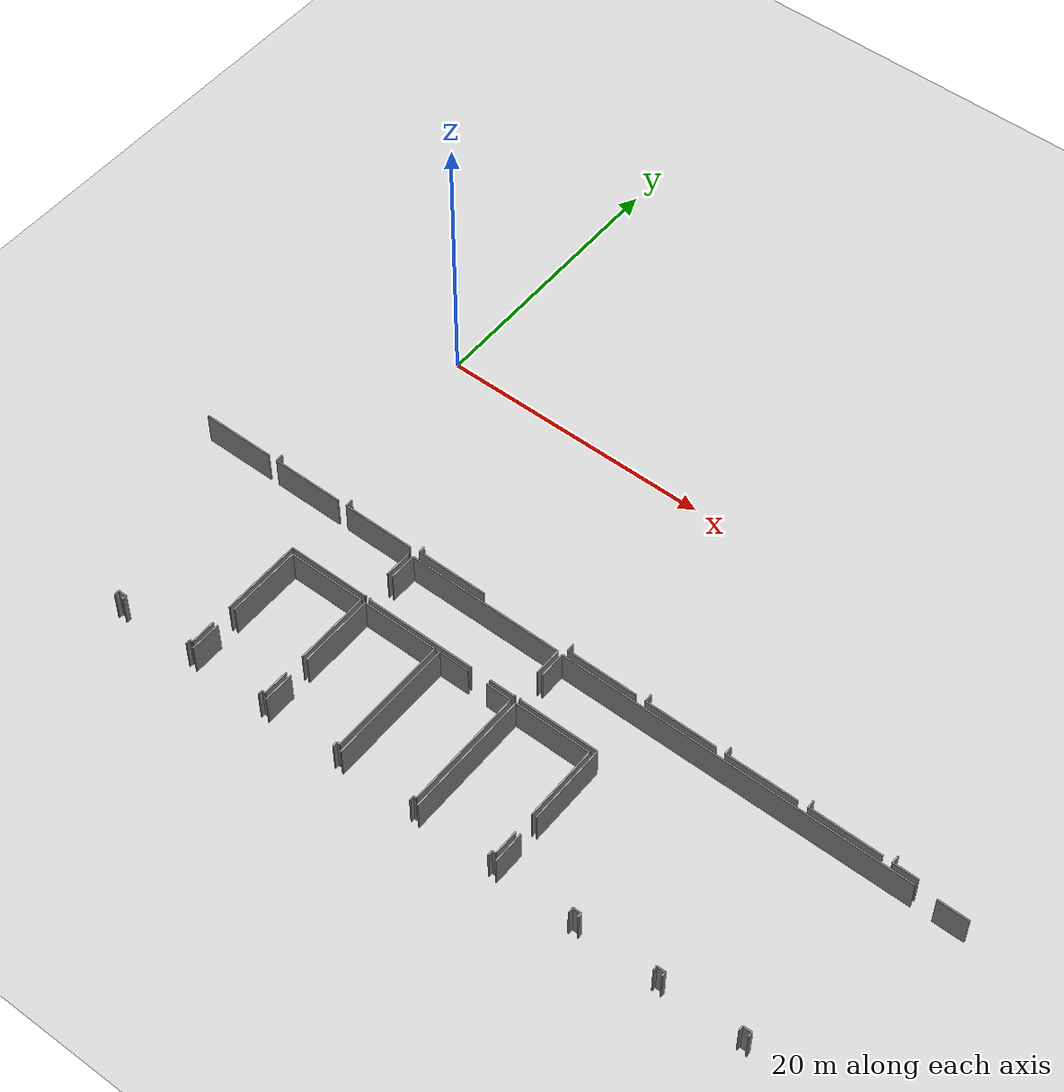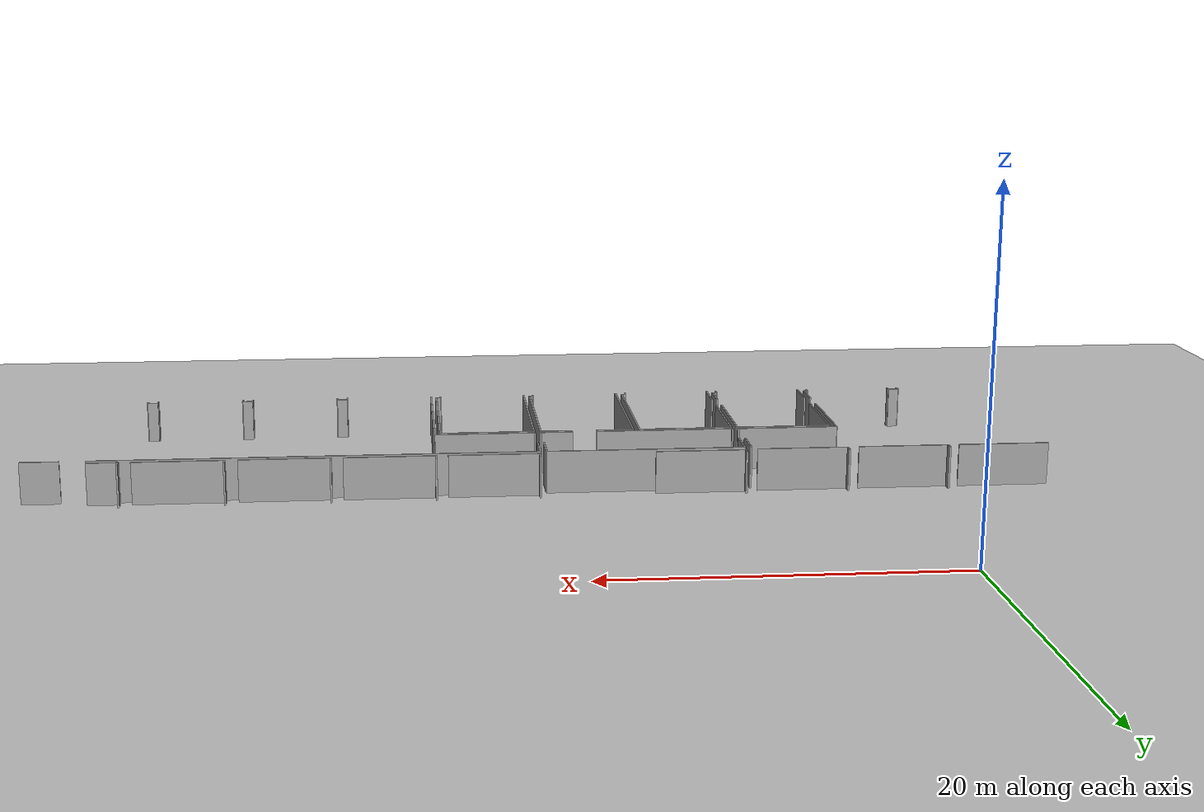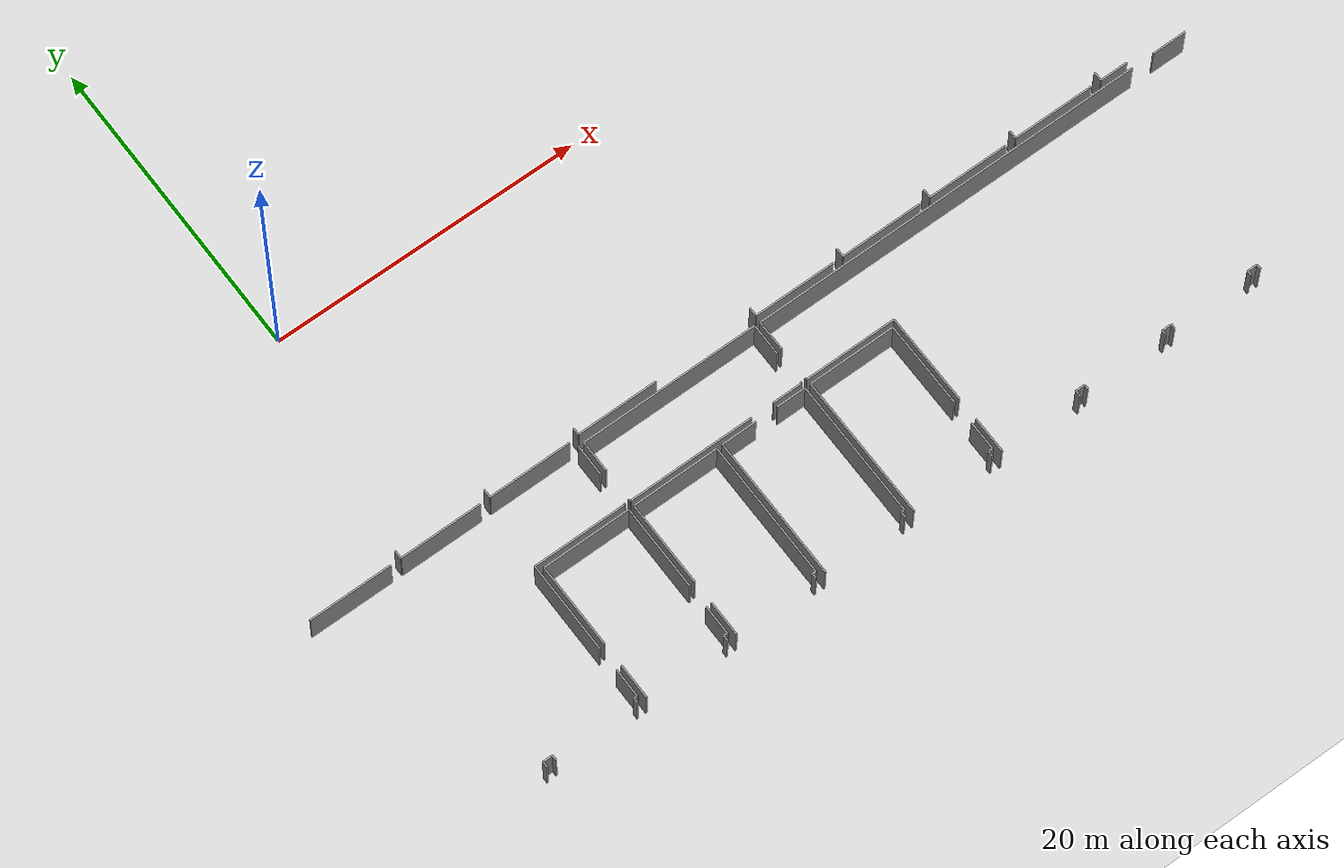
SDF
<sdf version="1.6">
 <world name="default">
  <model name="ground_plane">
   <static>1</static>
   <link name="link">
    <collision name="collision">
     <geometry><plane><normal>0 0 1</normal><size>100 100</size></plane></geometry>
     <surface><friction><ode><mu>100</mu><mu2>50</mu2></ode></friction></surface>
    </collision>
    <visual name="visual">
     <cast_shadows>0</cast_shadows>
     <geometry><plane><normal>0 0 1</normal><size>100 100</size></plane></geometry>
     <material>
      <script><uri>file://media/materials/scripts/gazebo.material</uri><name>Gazebo/Grey</name></script>
     </material>
    </visual>
   </link>
  </model>
  <model name="50010536_PLAN3">
   <static>1</static>
   <link name="Wall_336">
    <collision name="Wall_336_Collision">
     <geometry><box><size>2.05770878964 0.1 2.5</size></box></geometry>
     <pose>1.02885439482 0 1.25 0 0 0</pose>
    </collision>
    <visual name="Wall_336_Visual">
     <pose>1.02885439482 0 1.25 0 0 0</pose>
     <geometry><box><size>2.05770878964 0.1 2.5</size></box></geometry>
     <material>
      <script><uri>file://media/materials/scripts/gazebo.material</uri><name>Gazebo/Grey</name></script>
      <ambient>1 1 1 1</ambient>
     </material>
    </visual>
    <pose>111.475605498 -45.3595403612 0 0 0 -1.57079632679</pose>
   </link>
   <link name="Wall_337">
    <collision name="Wall_337_Collision">
     <geometry><box><size>0.09675269022 0.1 2.5</size></box></geometry>
     <pose>0.04837634511 0 1.25 0 0 0</pose>
    </collision>
    <visual name="Wall_337_Visual">
     <pose>0.04837634511 0 1.25 0 0 0</pose>
     <geometry><box><size>0.09675269022 0.1 2.5</size></box></geometry>
     <material>
      <script><uri>file://media/materials/scripts/gazebo.material</uri><name>Gazebo/Grey</name></script>
      <ambient>1 1 1 1</ambient>
     </material>
    </visual>
    <pose>111.475605498 -49.5000984033 0 0 0 -1.57079632679</pose>
   </link>
   <link name="Wall_338">
    <collision name="Wall_338_Collision">
     <geometry><box><size>6.03371107514 0.1 2.5</size></box></geometry>
     <pose>3.01685553757 0 1.25 0 0 0</pose>
    </collision>
    <visual name="Wall_338_Visual">
     <pose>3.01685553757 0 1.25 0 0 0</pose>
     <geometry><box><size>6.03371107514 0.1 2.5</size></box></geometry>
     <material>
      <script><uri>file://media/materials/scripts/gazebo.material</uri><name>Gazebo/Grey</name></script>
      <ambient>1 1 1 1</ambient>
     </material>
    </visual>
    <pose>111.475605498 -49.5968510935 0 0 0 3.14159265359</pose>
   </link>
   <link name="Wall_339">
    <collision name="Wall_339_Collision">
     <geometry><box><size>5.91410341872 0.1 2.5</size></box></geometry>
     <pose>2.95705170936 0 1.25 0 0 0</pose>
    </collision>
    <visual name="Wall_339_Visual">
     <pose>2.95705170936 0 1.25 0 0 0</pose>
     <geometry><box><size>5.91410341872 0.1 2.5</size></box></geometry>
     <material>
      <script><uri>file://media/materials/scripts/gazebo.material</uri><name>Gazebo/Grey</name></script>
      <ambient>1 1 1 1</ambient>
     </material>
    </visual>
    <pose>105.441894423 -49.5968510935 0 0 0 -1.57079632679</pose>
   </link>
   <link name="Wall_340">
    <collision name="Wall_340_Collision">
     <geometry><box><size>1.89010570422 0.1 2.5</size></box></geometry>
     <pose>0.945052852109 0 1.25 0 0 0</pose>
    </collision>
    <visual name="Wall_340_Visual">
     <pose>0.945052852109 0 1.25 0 0 0</pose>
     <geometry><box><size>1.89010570422 0.1 2.5</size></box></geometry>
     <material>
      <script><uri>file://media/materials/scripts/gazebo.material</uri><name>Gazebo/Grey</name></script>
      <ambient>1 1 1 1</ambient>
     </material>
    </visual>
    <pose>105.441894423 -56.985861664 0 0 0 -1.57079632679</pose>
   </link>
   <link name="Wall_341">
    <collision name="Wall_341_Collision">
     <geometry><box><size>0.21280512967 0.1 2.5</size></box></geometry>
     <pose>0.106402564835 0 1.25 0 0 0</pose>
    </collision>
    <visual name="Wall_341_Visual">
     <pose>0.106402564835 0 1.25 0 0 0</pose>
     <geometry><box><size>0.21280512967 0.1 2.5</size></box></geometry>
     <material>
      <script><uri>file://media/materials/scripts/gazebo.material</uri><name>Gazebo/Grey</name></script>
      <ambient>1 1 1 1</ambient>
     </material>
    </visual>
    <pose>105.441894423 -58.8759673682 0 0 0 3.14159265359</pose>
   </link>
   <link name="Wall_342">
    <collision name="Wall_342_Collision">
     <geometry><box><size>0.330127289464 0.1 2.5</size></box></geometry>
     <pose>0.165063644732 0 1.25 0 0 0</pose>
    </collision>
    <visual name="Wall_342_Visual">
     <pose>0.165063644732 0 1.25 0 0 0</pose>
     <geometry><box><size>0.330127289464 0.1 2.5</size></box></geometry>
     <material>
      <script><uri>file://media/materials/scripts/gazebo.material</uri><name>Gazebo/Grey</name></script>
      <ambient>1 1 1 1</ambient>
     </material>
    </visual>
    <pose>105.229089293 -58.8759673682 0 0 0 -1.57079632679</pose>
   </link>
   <link name="Wall_343">
    <collision name="Wall_343_Collision">
     <geometry><box><size>0.326064184363 0.1 2.5</size></box></geometry>
     <pose>0.163032092182 0 1.25 0 0 0</pose>
    </collision>
    <visual name="Wall_343_Visual">
     <pose>0.163032092182 0 1.25 0 0 0</pose>
     <geometry><box><size>0.326064184363 0.1 2.5</size></box></geometry>
     <material>
      <script><uri>file://media/materials/scripts/gazebo.material</uri><name>Gazebo/Grey</name></script>
      <ambient>1 1 1 1</ambient>
     </material>
    </visual>
    <pose>99.8017966543 -59.2060946577 0 0 0 1.57079632679</pose>
   </link>
   <link name="Wall_344">
    <collision name="Wall_344_Collision">
     <geometry><box><size>0.615052534679 0.1 2.5</size></box></geometry>
     <pose>0.30752626734 0 1.25 0 0 0</pose>
    </collision>
    <visual name="Wall_344_Visual">
     <pose>0.30752626734 0 1.25 0 0 0</pose>
     <geometry><box><size>0.615052534679 0.1 2.5</size></box></geometry>
     <material>
      <script><uri>file://media/materials/scripts/gazebo.material</uri><name>Gazebo/Grey</name></script>
      <ambient>1 1 1 1</ambient>
     </material>
    </visual>
    <pose>99.8017966543 -58.8800304733 0 0 0 3.14159265359</pose>
   </link>
   <link name="Wall_345">
    <collision name="Wall_345_Collision">
     <geometry><box><size>0.379646382884 0.1 2.5</size></box></geometry>
     <pose>0.189823191442 0 1.25 0 0 0</pose>
    </collision>
    <visual name="Wall_345_Visual">
     <pose>0.189823191442 0 1.25 0 0 0</pose>
     <geometry><box><size>0.379646382884 0.1 2.5</size></box></geometry>
     <material>
      <script><uri>file://media/materials/scripts/gazebo.material</uri><name>Gazebo/Grey</name></script>
      <ambient>1 1 1 1</ambient>
     </material>
    </visual>
    <pose>99.1867441196 -58.8800304733 0 0 0 -1.57079632679</pose>
   </link>
   <link name="Wall_374">
    <collision name="Wall_374_Collision">
     <geometry><box><size>5.6830143161 0.1 2.5</size></box></geometry>
     <pose>2.84150715805 0 1.25 0 0 0</pose>
    </collision>
    <visual name="Wall_374_Visual">
     <pose>2.84150715805 0 1.25 0 0 0</pose>
     <geometry><box><size>5.6830143161 0.1 2.5</size></box></geometry>
     <material>
      <script><uri>file://media/materials/scripts/gazebo.material</uri><name>Gazebo/Grey</name></script>
      <ambient>1 1 1 1</ambient>
     </material>
    </visual>
    <pose>105.792845126 -49.9531346221 0 0 0 0.0</pose>
   </link>
   <link name="Wall_375">
    <collision name="Wall_375_Collision">
     <geometry><box><size>5.5380122528 0.1 2.5</size></box></geometry>
     <pose>2.7690061264 0 1.25 0 0 0</pose>
    </collision>
    <visual name="Wall_375_Visual">
     <pose>2.7690061264 0 1.25 0 0 0</pose>
     <geometry><box><size>5.5380122528 0.1 2.5</size></box></geometry>
     <material>
      <script><uri>file://media/materials/scripts/gazebo.material</uri><name>Gazebo/Grey</name></script>
      <ambient>1 1 1 1</ambient>
     </material>
    </visual>
    <pose>111.475859442 -49.9531346221 0 0 0 -1.57079632679</pose>
   </link>
   <link name="Wall_376">
    <collision name="Wall_376_Collision">
     <geometry><box><size>1.90381868393 0.1 2.5</size></box></geometry>
     <pose>0.951909341967 0 1.25 0 0 0</pose>
    </collision>
    <visual name="Wall_376_Visual">
     <pose>0.951909341967 0 1.25 0 0 0</pose>
     <geometry><box><size>1.90381868393 0.1 2.5</size></box></geometry>
     <material>
      <script><uri>file://media/materials/scripts/gazebo.material</uri><name>Gazebo/Grey</name></script>
      <ambient>1 1 1 1</ambient>
     </material>
    </visual>
    <pose>111.475859442 -56.9721486843 0 0 0 -1.57079632679</pose>
   </link>
   <link name="Wall_377">
    <collision name="Wall_377_Collision">
     <geometry><box><size>0.249880963718 0.1 2.5</size></box></geometry>
     <pose>0.124940481859 0 1.25 0 0 0</pose>
    </collision>
    <visual name="Wall_377_Visual">
     <pose>0.124940481859 0 1.25 0 0 0</pose>
     <geometry><box><size>0.249880963718 0.1 2.5</size></box></geometry>
     <material>
      <script><uri>file://media/materials/scripts/gazebo.material</uri><name>Gazebo/Grey</name></script>
      <ambient>1 1 1 1</ambient>
     </material>
    </visual>
    <pose>111.475859442 -58.8759673682 0 0 0 3.14159265359</pose>
   </link>
   <link name="Wall_378">
    <collision name="Wall_378_Collision">
     <geometry><box><size>0.342570548837 0.1 2.5</size></box></geometry>
     <pose>0.171285274418 0 1.25 0 0 0</pose>
    </collision>
    <visual name="Wall_378_Visual">
     <pose>0.171285274418 0 1.25 0 0 0</pose>
     <geometry><box><size>0.342570548837 0.1 2.5</size></box></geometry>
     <material>
      <script><uri>file://media/materials/scripts/gazebo.material</uri><name>Gazebo/Grey</name></script>
      <ambient>1 1 1 1</ambient>
     </material>
    </visual>
    <pose>111.225978478 -58.8759673682 0 0 0 -1.57079632679</pose>
   </link>
   <link name="Wall_379">
    <collision name="Wall_379_Collision">
     <geometry><box><size>2.26010221249 0.1 2.5</size></box></geometry>
     <pose>1.13005110624 0 1.25 0 0 0</pose>
    </collision>
    <visual name="Wall_379_Visual">
     <pose>1.13005110624 0 1.25 0 0 0</pose>
     <geometry><box><size>2.26010221249 0.1 2.5</size></box></geometry>
     <material>
      <script><uri>file://media/materials/scripts/gazebo.material</uri><name>Gazebo/Grey</name></script>
      <ambient>1 1 1 1</ambient>
     </material>
    </visual>
    <pose>105.800717392 -59.218537917 0 0 0 1.57079632679</pose>
   </link>
   <link name="Wall_380">
    <collision name="Wall_380_Collision">
     <geometry><box><size>5.48926063648 0.1 2.5</size></box></geometry>
     <pose>2.74463031824 0 1.25 0 0 0</pose>
    </collision>
    <visual name="Wall_380_Visual">
     <pose>2.74463031824 0 1.25 0 0 0</pose>
     <geometry><box><size>5.48926063648 0.1 2.5</size></box></geometry>
     <material>
      <script><uri>file://media/materials/scripts/gazebo.material</uri><name>Gazebo/Grey</name></script>
      <ambient>1 1 1 1</ambient>
     </material>
    </visual>
    <pose>105.800717392 -55.4423896137 0 0 0 1.57223044868</pose>
   </link>
   <link name="Wall_381">
    <collision name="Wall_381_Collision">
     <geometry><box><size>2.26543503793 0.1 2.5</size></box></geometry>
     <pose>1.13271751897 0 1.25 0 0 0</pose>
    </collision>
    <visual name="Wall_381_Visual">
     <pose>1.13271751897 0 1.25 0 0 0</pose>
     <geometry><box><size>2.26543503793 0.1 2.5</size></box></geometry>
     <material>
      <script><uri>file://media/materials/scripts/gazebo.material</uri><name>Gazebo/Grey</name></script>
      <ambient>1 1 1 1</ambient>
     </material>
    </visual>
    <pose>111.828587754 -59.218537917 0 0 0 1.57079632679</pose>
   </link>
   <link name="Wall_382">
    <collision name="Wall_382_Collision">
     <geometry><box><size>5.51566517475 0.1 2.5</size></box></geometry>
     <pose>2.75783258737 0 1.25 0 0 0</pose>
    </collision>
    <visual name="Wall_382_Visual">
     <pose>2.75783258737 0 1.25 0 0 0</pose>
     <geometry><box><size>5.51566517475 0.1 2.5</size></box></geometry>
     <material>
      <script><uri>file://media/materials/scripts/gazebo.material</uri><name>Gazebo/Grey</name></script>
      <ambient>1 1 1 1</ambient>
     </material>
    </visual>
    <pose>111.828587754 -55.4629590833 0 0 0 1.57079632679</pose>
   </link>
   <link name="Wall_383">
    <collision name="Wall_383_Collision">
     <geometry><box><size>5.61597308193 0.1 2.5</size></box></geometry>
     <pose>2.80798654096 0 1.25 0 0 0</pose>
    </collision>
    <visual name="Wall_383_Visual">
     <pose>2.80798654096 0 1.25 0 0 0</pose>
     <geometry><box><size>5.61597308193 0.1 2.5</size></box></geometry>
     <material>
      <script><uri>file://media/materials/scripts/gazebo.material</uri><name>Gazebo/Grey</name></script>
      <ambient>1 1 1 1</ambient>
     </material>
    </visual>
    <pose>111.828587754 -49.9472939085 0 0 0 0.0</pose>
   </link>
   <link name="Wall_384">
    <collision name="Wall_384_Collision">
     <geometry><box><size>8.9121670952 0.1 2.5</size></box></geometry>
     <pose>4.4560835476 0 1.25 0 0 0</pose>
    </collision>
    <visual name="Wall_384_Visual">
     <pose>4.4560835476 0 1.25 0 0 0</pose>
     <geometry><box><size>8.9121670952 0.1 2.5</size></box></geometry>
     <material>
      <script><uri>file://media/materials/scripts/gazebo.material</uri><name>Gazebo/Grey</name></script>
      <ambient>1 1 1 1</ambient>
     </material>
    </visual>
    <pose>117.444560835 -49.9472939085 0 0 0 -1.57079632679</pose>
   </link>
   <link name="Wall_385">
    <collision name="Wall_385_Collision">
     <geometry><box><size>0.235660095864 0.1 2.5</size></box></geometry>
     <pose>0.117830047932 0 1.25 0 0 0</pose>
    </collision>
    <visual name="Wall_385_Visual">
     <pose>0.117830047932 0 1.25 0 0 0</pose>
     <geometry><box><size>0.235660095864 0.1 2.5</size></box></geometry>
     <material>
      <script><uri>file://media/materials/scripts/gazebo.material</uri><name>Gazebo/Grey</name></script>
      <ambient>1 1 1 1</ambient>
     </material>
    </visual>
    <pose>117.444560835 -58.8594610037 0 0 0 3.14159265359</pose>
   </link>
   <link name="Wall_386">
    <collision name="Wall_386_Collision">
     <geometry><box><size>0.336983779323 0.1 2.5</size></box></geometry>
     <pose>0.168491889661 0 1.25 0 0 0</pose>
    </collision>
    <visual name="Wall_386_Visual">
     <pose>0.168491889661 0 1.25 0 0 0</pose>
     <geometry><box><size>0.336983779323 0.1 2.5</size></box></geometry>
     <material>
      <script><uri>file://media/materials/scripts/gazebo.material</uri><name>Gazebo/Grey</name></script>
      <ambient>1 1 1 1</ambient>
     </material>
    </visual>
    <pose>117.20890074 -58.8594610037 0 0 0 -1.57079632679</pose>
   </link>
   <link name="Wall_387">
    <collision name="Wall_387_Collision">
     <geometry><box><size>9.27073612037 0.1 2.5</size></box></geometry>
     <pose>4.63536806018 0 1.25 0 0 0</pose>
    </collision>
    <visual name="Wall_387_Visual">
     <pose>4.63536806018 0 1.25 0 0 0</pose>
     <geometry><box><size>9.27073612037 0.1 2.5</size></box></geometry>
     <material>
      <script><uri>file://media/materials/scripts/gazebo.material</uri><name>Gazebo/Grey</name></script>
      <ambient>1 1 1 1</ambient>
     </material>
    </visual>
    <pose>117.829793988 -59.2101577628 0 0 0 1.57079632679</pose>
   </link>
   <link name="Wall_388">
    <collision name="Wall_388_Collision">
     <geometry><box><size>2.25832460401 0.1 2.5</size></box></geometry>
     <pose>1.129162302 0 1.25 0 0 0</pose>
    </collision>
    <visual name="Wall_388_Visual">
     <pose>1.129162302 0 1.25 0 0 0</pose>
     <geometry><box><size>2.25832460401 0.1 2.5</size></box></geometry>
     <material>
      <script><uri>file://media/materials/scripts/gazebo.material</uri><name>Gazebo/Grey</name></script>
      <ambient>1 1 1 1</ambient>
     </material>
    </visual>
    <pose>117.829793988 -49.9394216424 0 0 0 0.0</pose>
   </link>
   <link name="Wall_389">
    <collision name="Wall_389_Collision">
     <geometry><box><size>1.89467669746 0.1 2.5</size></box></geometry>
     <pose>0.947338348729 0 1.25 0 0 0</pose>
    </collision>
    <visual name="Wall_389_Visual">
     <pose>0.947338348729 0 1.25 0 0 0</pose>
     <geometry><box><size>1.89467669746 0.1 2.5</size></box></geometry>
     <material>
      <script><uri>file://media/materials/scripts/gazebo.material</uri><name>Gazebo/Grey</name></script>
      <ambient>1 1 1 1</ambient>
     </material>
    </visual>
    <pose>121.553121925 -49.9394216424 0 0 0 0.0</pose>
   </link>
   <link name="Wall_390">
    <collision name="Wall_390_Collision">
     <geometry><box><size>8.9357838936 0.1 2.5</size></box></geometry>
     <pose>4.4678919468 0 1.25 0 0 0</pose>
    </collision>
    <visual name="Wall_390_Visual">
     <pose>4.4678919468 0 1.25 0 0 0</pose>
     <geometry><box><size>8.9357838936 0.1 2.5</size></box></geometry>
     <material>
      <script><uri>file://media/materials/scripts/gazebo.material</uri><name>Gazebo/Grey</name></script>
      <ambient>1 1 1 1</ambient>
     </material>
    </visual>
    <pose>123.447798622 -49.9394216424 0 0 0 -1.57079632679</pose>
   </link>
   <link name="Wall_391">
    <collision name="Wall_391_Collision">
     <geometry><box><size>0.211789353395 0.1 2.5</size></box></geometry>
     <pose>0.105894676697 0 1.25 0 0 0</pose>
    </collision>
    <visual name="Wall_391_Visual">
     <pose>0.105894676697 0 1.25 0 0 0</pose>
     <geometry><box><size>0.211789353395 0.1 2.5</size></box></geometry>
     <material>
      <script><uri>file://media/materials/scripts/gazebo.material</uri><name>Gazebo/Grey</name></script>
      <ambient>1 1 1 1</ambient>
     </material>
    </visual>
    <pose>123.447798622 -58.875205536 0 0 0 3.14159265359</pose>
   </link>
   <link name="Wall_392">
    <collision name="Wall_392_Collision">
     <geometry><box><size>0.337237723391 0.1 2.5</size></box></geometry>
     <pose>0.168618861696 0 1.25 0 0 0</pose>
    </collision>
    <visual name="Wall_392_Visual">
     <pose>0.168618861696 0 1.25 0 0 0</pose>
     <geometry><box><size>0.337237723391 0.1 2.5</size></box></geometry>
     <material>
      <script><uri>file://media/materials/scripts/gazebo.material</uri><name>Gazebo/Grey</name></script>
      <ambient>1 1 1 1</ambient>
     </material>
    </visual>
    <pose>123.236009269 -58.875205536 0 0 0 -1.57079632679</pose>
   </link>
   <link name="Wall_393">
    <collision name="Wall_393_Collision">
     <geometry><box><size>11.6095609942 0.1 2.5</size></box></geometry>
     <pose>5.8047804971 0 1.25 0 0 0</pose>
    </collision>
    <visual name="Wall_393_Visual">
     <pose>5.8047804971 0 1.25 0 0 0</pose>
     <geometry><box><size>11.6095609942 0.1 2.5</size></box></geometry>
     <material>
      <script><uri>file://media/materials/scripts/gazebo.material</uri><name>Gazebo/Grey</name></script>
      <ambient>1 1 1 1</ambient>
     </material>
    </visual>
    <pose>111.849157223 -45.3564930324 0 0 0 0.0</pose>
   </link>
   <link name="Wall_394">
    <collision name="Wall_394_Collision">
     <geometry><box><size>2.06227978288 0.1 2.5</size></box></geometry>
     <pose>1.03113989144 0 1.25 0 0 0</pose>
    </collision>
    <visual name="Wall_394_Visual">
     <pose>1.03113989144 0 1.25 0 0 0</pose>
     <geometry><box><size>2.06227978288 0.1 2.5</size></box></geometry>
     <material>
      <script><uri>file://media/materials/scripts/gazebo.material</uri><name>Gazebo/Grey</name></script>
      <ambient>1 1 1 1</ambient>
     </material>
    </visual>
    <pose>123.458718217 -45.3564930324 0 0 0 -1.57079632679</pose>
   </link>
   <link name="Wall_395">
    <collision name="Wall_395_Collision">
     <geometry><box><size>0.109195949592 0.1 2.5</size></box></geometry>
     <pose>0.0545979747961 0 1.25 0 0 0</pose>
    </collision>
    <visual name="Wall_395_Visual">
     <pose>0.0545979747961 0 1.25 0 0 0</pose>
     <geometry><box><size>0.109195949592 0.1 2.5</size></box></geometry>
     <material>
      <script><uri>file://media/materials/scripts/gazebo.material</uri><name>Gazebo/Grey</name></script>
      <ambient>1 1 1 1</ambient>
     </material>
    </visual>
    <pose>123.458718217 -49.5059391169 0 0 0 -1.57079632679</pose>
   </link>
   <link name="Wall_396">
    <collision name="Wall_396_Collision">
     <geometry><box><size>1.92667365013 0.1 2.5</size></box></geometry>
     <pose>0.963336825064 0 1.25 0 0 0</pose>
    </collision>
    <visual name="Wall_396_Visual">
     <pose>0.963336825064 0 1.25 0 0 0</pose>
     <geometry><box><size>1.92667365013 0.1 2.5</size></box></geometry>
     <material>
      <script><uri>file://media/materials/scripts/gazebo.material</uri><name>Gazebo/Grey</name></script>
      <ambient>1 1 1 1</ambient>
     </material>
    </visual>
    <pose>123.458718217 -49.6151350665 0 0 0 3.14159265359</pose>
   </link>
   <link name="Wall_397">
    <collision name="Wall_397_Collision">
     <geometry><box><size>8.22677205346 0.1 2.5</size></box></geometry>
     <pose>4.11338602673 0 1.25 0 0 0</pose>
    </collision>
    <visual name="Wall_397_Visual">
     <pose>4.11338602673 0 1.25 0 0 0</pose>
     <geometry><box><size>8.22677205346 0.1 2.5</size></box></geometry>
     <material>
      <script><uri>file://media/materials/scripts/gazebo.material</uri><name>Gazebo/Grey</name></script>
      <ambient>1 1 1 1</ambient>
     </material>
    </visual>
    <pose>120.061962353 -49.6151350665 0 0 0 3.14159265359</pose>
   </link>
   <link name="Wall_398">
    <collision name="Wall_398_Collision">
     <geometry><box><size>0.142462622607 0.1 2.5</size></box></geometry>
     <pose>0.0712313113037 0 1.25 0 0 0</pose>
    </collision>
    <visual name="Wall_398_Visual">
     <pose>0.0712313113037 0 1.25 0 0 0</pose>
     <geometry><box><size>0.142462622607 0.1 2.5</size></box></geometry>
     <material>
      <script><uri>file://media/materials/scripts/gazebo.material</uri><name>Gazebo/Grey</name></script>
      <ambient>1 1 1 1</ambient>
     </material>
    </visual>
    <pose>111.835190299 -49.6151350665 0 0 0 1.57079632679</pose>
   </link>
   <link name="Wall_399">
    <collision name="Wall_399_Collision">
     <geometry><box><size>2.0262678622 0.1 2.5</size></box></geometry>
     <pose>1.0131339311 0 1.25 0 0 0</pose>
    </collision>
    <visual name="Wall_399_Visual">
     <pose>1.0131339311 0 1.25 0 0 0</pose>
     <geometry><box><size>2.0262678622 0.1 2.5</size></box></geometry>
     <material>
      <script><uri>file://media/materials/scripts/gazebo.material</uri><name>Gazebo/Grey</name></script>
      <ambient>1 1 1 1</ambient>
     </material>
    </visual>
    <pose>111.835190299 -47.3827127575 0 0 0 1.56390334159</pose>
   </link>
   <link name="Wall_400">
    <collision name="Wall_400_Collision">
     <geometry><box><size>9.27810049837 0.1 2.5</size></box></geometry>
     <pose>4.63905024918 0 1.25 0 0 0</pose>
    </collision>
    <visual name="Wall_400_Visual">
     <pose>4.63905024918 0 1.25 0 0 0</pose>
     <geometry><box><size>9.27810049837 0.1 2.5</size></box></geometry>
     <material>
      <script><uri>file://media/materials/scripts/gazebo.material</uri><name>Gazebo/Grey</name></script>
      <ambient>1 1 1 1</ambient>
     </material>
    </visual>
    <pose>123.829476558 -59.2170142526 0 0 0 1.57079632679</pose>
   </link>
   <link name="Wall_401">
    <collision name="Wall_401_Collision">
     <geometry><box><size>5.65254102784 0.1 2.5</size></box></geometry>
     <pose>2.82627051392 0 1.25 0 0 0</pose>
    </collision>
    <visual name="Wall_401_Visual">
     <pose>2.82627051392 0 1.25 0 0 0</pose>
     <geometry><box><size>5.65254102784 0.1 2.5</size></box></geometry>
     <material>
      <script><uri>file://media/materials/scripts/gazebo.material</uri><name>Gazebo/Grey</name></script>
      <ambient>1 1 1 1</ambient>
     </material>
    </visual>
    <pose>123.829476558 -49.9389137542 0 0 0 0.0</pose>
   </link>
   <link name="Wall_402">
    <collision name="Wall_402_Collision">
     <geometry><box><size>5.55045551217 0.1 2.5</size></box></geometry>
     <pose>2.77522775609 0 1.25 0 0 0</pose>
    </collision>
    <visual name="Wall_402_Visual">
     <pose>2.77522775609 0 1.25 0 0 0</pose>
     <geometry><box><size>5.55045551217 0.1 2.5</size></box></geometry>
     <material>
      <script><uri>file://media/materials/scripts/gazebo.material</uri><name>Gazebo/Grey</name></script>
      <ambient>1 1 1 1</ambient>
     </material>
    </visual>
    <pose>129.482017586 -49.9389137542 0 0 0 -1.57079632679</pose>
   </link>
   <link name="Wall_403">
    <collision name="Wall_403_Collision">
     <geometry><box><size>1.86191791258 0.1 2.5</size></box></geometry>
     <pose>0.93095895629 0 1.25 0 0 0</pose>
    </collision>
    <visual name="Wall_403_Visual">
     <pose>0.93095895629 0 1.25 0 0 0</pose>
     <geometry><box><size>1.86191791258 0.1 2.5</size></box></geometry>
     <material>
      <script><uri>file://media/materials/scripts/gazebo.material</uri><name>Gazebo/Grey</name></script>
      <ambient>1 1 1 1</ambient>
     </material>
    </visual>
    <pose>129.482017586 -57.0087166302 0 0 0 -1.57079632679</pose>
   </link>
   <link name="Wall_404">
    <collision name="Wall_404_Collision">
     <geometry><box><size>0.27959241977 0.1 2.5</size></box></geometry>
     <pose>0.139796209885 0 1.25 0 0 0</pose>
    </collision>
    <visual name="Wall_404_Visual">
     <pose>0.139796209885 0 1.25 0 0 0</pose>
     <geometry><box><size>0.27959241977 0.1 2.5</size></box></geometry>
     <material>
      <script><uri>file://media/materials/scripts/gazebo.material</uri><name>Gazebo/Grey</name></script>
      <ambient>1 1 1 1</ambient>
     </material>
    </visual>
    <pose>129.482017586 -58.8706345427 0 0 0 3.14159265359</pose>
   </link>
   <link name="Wall_405">
    <collision name="Wall_405_Collision">
     <geometry><box><size>0.350696759039 0.1 2.5</size></box></geometry>
     <pose>0.175348379519 0 1.25 0 0 0</pose>
    </collision>
    <visual name="Wall_405_Visual">
     <pose>0.175348379519 0 1.25 0 0 0</pose>
     <geometry><box><size>0.350696759039 0.1 2.5</size></box></geometry>
     <material>
      <script><uri>file://media/materials/scripts/gazebo.material</uri><name>Gazebo/Grey</name></script>
      <ambient>1 1 1 1</ambient>
     </material>
    </visual>
    <pose>129.202425166 -58.8706345427 0 0 0 -1.57079632679</pose>
   </link>
   <link name="Wall_406">
    <collision name="Wall_406_Collision">
     <geometry><box><size>2.35253785354 0.1 2.5</size></box></geometry>
     <pose>1.17626892677 0 1.25 0 0 0</pose>
    </collision>
    <visual name="Wall_406_Visual">
     <pose>1.17626892677 0 1.25 0 0 0</pose>
     <geometry><box><size>2.35253785354 0.1 2.5</size></box></geometry>
     <material>
      <script><uri>file://media/materials/scripts/gazebo.material</uri><name>Gazebo/Grey</name></script>
      <ambient>1 1 1 1</ambient>
     </material>
    </visual>
    <pose>129.810621211 -59.3000539631 0 0 0 1.57079632679</pose>
   </link>
   <link name="Wall_407">
    <collision name="Wall_407_Collision">
     <geometry><box><size>5.86560010158 0.1 2.5</size></box></geometry>
     <pose>2.93280005079 0 1.25 0 0 0</pose>
    </collision>
    <visual name="Wall_407_Visual">
     <pose>2.93280005079 0 1.25 0 0 0</pose>
     <geometry><box><size>5.86560010158 0.1 2.5</size></box></geometry>
     <material>
      <script><uri>file://media/materials/scripts/gazebo.material</uri><name>Gazebo/Grey</name></script>
      <ambient>1 1 1 1</ambient>
     </material>
    </visual>
    <pose>129.810621211 -55.4708313494 0 0 0 1.57079632679</pose>
   </link>
   <link name="Wall_408">
    <collision name="Wall_408_Collision">
     <geometry><box><size>5.99536552074 0.1 2.5</size></box></geometry>
     <pose>2.99768276037 0 1.25 0 0 0</pose>
    </collision>
    <visual name="Wall_408_Visual">
     <pose>2.99768276037 0 1.25 0 0 0</pose>
     <geometry><box><size>5.99536552074 0.1 2.5</size></box></geometry>
     <material>
      <script><uri>file://media/materials/scripts/gazebo.material</uri><name>Gazebo/Grey</name></script>
      <ambient>1 1 1 1</ambient>
     </material>
    </visual>
    <pose>129.810621211 -49.6052312478 0 0 0 3.14159265359</pose>
   </link>
   <link name="Wall_409">
    <collision name="Wall_409_Collision">
     <geometry><box><size>0.11833793607 0.1 2.5</size></box></geometry>
     <pose>0.0591689680348 0 1.25 0 0 0</pose>
    </collision>
    <visual name="Wall_409_Visual">
     <pose>0.0591689680348 0 1.25 0 0 0</pose>
     <geometry><box><size>0.11833793607 0.1 2.5</size></box></geometry>
     <material>
      <script><uri>file://media/materials/scripts/gazebo.material</uri><name>Gazebo/Grey</name></script>
      <ambient>1 1 1 1</ambient>
     </material>
    </visual>
    <pose>123.81525569 -49.6052312478 0 0 0 1.57079632679</pose>
   </link>
   <link name="Wall_410">
    <collision name="Wall_410_Collision">
     <geometry><box><size>1.97136780624 0.1 2.5</size></box></geometry>
     <pose>0.98568390312 0 1.25 0 0 0</pose>
    </collision>
    <visual name="Wall_410_Visual">
     <pose>0.98568390312 0 1.25 0 0 0</pose>
     <geometry><box><size>1.97136780624 0.1 2.5</size></box></geometry>
     <material>
      <script><uri>file://media/materials/scripts/gazebo.material</uri><name>Gazebo/Grey</name></script>
      <ambient>1 1 1 1</ambient>
     </material>
    </visual>
    <pose>123.81525569 -47.3557946862 0 0 0 1.57079632679</pose>
   </link>
   <link name="Wall_411">
    <collision name="Wall_411_Collision">
     <geometry><box><size>25.9236263213 0.1 2.5</size></box></geometry>
     <pose>12.9618131607 0 1.25 0 0 0</pose>
    </collision>
    <visual name="Wall_411_Visual">
     <pose>12.9618131607 0 1.25 0 0 0</pose>
     <geometry><box><size>25.9236263213 0.1 2.5</size></box></geometry>
     <material>
      <script><uri>file://media/materials/scripts/gazebo.material</uri><name>Gazebo/Grey</name></script>
      <ambient>1 1 1 1</ambient>
     </material>
    </visual>
    <pose>123.81525569 -45.38442688 0 0 0 0.0</pose>
   </link>
   <link name="Wall_412">
    <collision name="Wall_412_Collision">
     <geometry><box><size>2.26061010063 0.1 2.5</size></box></geometry>
     <pose>1.13030505031 0 1.25 0 0 0</pose>
    </collision>
    <visual name="Wall_412_Visual">
     <pose>1.13030505031 0 1.25 0 0 0</pose>
     <geometry><box><size>2.26061010063 0.1 2.5</size></box></geometry>
     <material>
      <script><uri>file://media/materials/scripts/gazebo.material</uri><name>Gazebo/Grey</name></script>
      <ambient>1 1 1 1</ambient>
     </material>
    </visual>
    <pose>151.220899597 -45.38442688 0 0 0 0.0</pose>
   </link>
   <link name="Wall_418">
    <collision name="Wall_418_Collision">
     <geometry><box><size>0.315652477542 0.1 2.5</size></box></geometry>
     <pose>0.157826238771 0 1.25 0 0 0</pose>
    </collision>
    <visual name="Wall_418_Visual">
     <pose>0.157826238771 0 1.25 0 0 0</pose>
     <geometry><box><size>0.315652477542 0.1 2.5</size></box></geometry>
     <material>
      <script><uri>file://media/materials/scripts/gazebo.material</uri><name>Gazebo/Grey</name></script>
      <ambient>1 1 1 1</ambient>
     </material>
    </visual>
    <pose>147.8383646 -59.1908580135 0 0 0 1.57079632679</pose>
   </link>
   <link name="Wall_419">
    <collision name="Wall_419_Collision">
     <geometry><box><size>0.638669333079 0.1 2.5</size></box></geometry>
     <pose>0.31933466654 0 1.25 0 0 0</pose>
    </collision>
    <visual name="Wall_419_Visual">
     <pose>0.31933466654 0 1.25 0 0 0</pose>
     <geometry><box><size>0.638669333079 0.1 2.5</size></box></geometry>
     <material>
      <script><uri>file://media/materials/scripts/gazebo.material</uri><name>Gazebo/Grey</name></script>
      <ambient>1 1 1 1</ambient>
     </material>
    </visual>
    <pose>147.8383646 -58.875205536 0 0 0 3.14159265359</pose>
   </link>
   <link name="Wall_420">
    <collision name="Wall_420_Collision">
     <geometry><box><size>0.318445862299 0.1 2.5</size></box></geometry>
     <pose>0.159222931149 0 1.25 0 0 0</pose>
    </collision>
    <visual name="Wall_420_Visual">
     <pose>0.159222931149 0 1.25 0 0 0</pose>
     <geometry><box><size>0.318445862299 0.1 2.5</size></box></geometry>
     <material>
      <script><uri>file://media/materials/scripts/gazebo.material</uri><name>Gazebo/Grey</name></script>
      <ambient>1 1 1 1</ambient>
     </material>
    </visual>
    <pose>147.199695267 -58.875205536 0 0 0 -1.57079632679</pose>
   </link>
   <link name="Wall_421">
    <collision name="Wall_421_Collision">
     <geometry><box><size>0.311081484303 0.1 2.5</size></box></geometry>
     <pose>0.155540742152 0 1.25 0 0 0</pose>
    </collision>
    <visual name="Wall_421_Visual">
     <pose>0.155540742152 0 1.25 0 0 0</pose>
     <geometry><box><size>0.311081484303 0.1 2.5</size></box></geometry>
     <material>
      <script><uri>file://media/materials/scripts/gazebo.material</uri><name>Gazebo/Grey</name></script>
      <ambient>1 1 1 1</ambient>
     </material>
    </visual>
    <pose>141.833603149 -59.1936513983 0 0 0 1.57079632679</pose>
   </link>
   <link name="Wall_422">
    <collision name="Wall_422_Collision">
     <geometry><box><size>0.618099863505 0.1 2.5</size></box></geometry>
     <pose>0.309049931753 0 1.25 0 0 0</pose>
    </collision>
    <visual name="Wall_422_Visual">
     <pose>0.309049931753 0 1.25 0 0 0</pose>
     <geometry><box><size>0.618099863505 0.1 2.5</size></box></geometry>
     <material>
      <script><uri>file://media/materials/scripts/gazebo.material</uri><name>Gazebo/Grey</name></script>
      <ambient>1 1 1 1</ambient>
     </material>
    </visual>
    <pose>141.833603149 -58.882569914 0 0 0 3.14159265359</pose>
   </link>
   <link name="Wall_423">
    <collision name="Wall_423_Collision">
     <geometry><box><size>0.307780211408 0.1 2.5</size></box></geometry>
     <pose>0.153890105704 0 1.25 0 0 0</pose>
    </collision>
    <visual name="Wall_423_Visual">
     <pose>0.153890105704 0 1.25 0 0 0</pose>
     <geometry><box><size>0.307780211408 0.1 2.5</size></box></geometry>
     <material>
      <script><uri>file://media/materials/scripts/gazebo.material</uri><name>Gazebo/Grey</name></script>
      <ambient>1 1 1 1</ambient>
     </material>
    </visual>
    <pose>141.215503285 -58.882569914 0 0 0 -1.57079632679</pose>
   </link>
   <link name="Wall_424">
    <collision name="Wall_424_Collision">
     <geometry><box><size>0.302701330032 0.1 2.5</size></box></geometry>
     <pose>0.151350665016 0 1.25 0 0 0</pose>
    </collision>
    <visual name="Wall_424_Visual">
     <pose>0.151350665016 0 1.25 0 0 0</pose>
     <geometry><box><size>0.302701330032 0.1 2.5</size></box></geometry>
     <material>
      <script><uri>file://media/materials/scripts/gazebo.material</uri><name>Gazebo/Grey</name></script>
      <ambient>1 1 1 1</ambient>
     </material>
    </visual>
    <pose>135.812081389 -59.1903501254 0 0 0 1.57079632679</pose>
   </link>
   <link name="Wall_425">
    <collision name="Wall_425_Collision">
     <geometry><box><size>0.605402660064 0.1 2.5</size></box></geometry>
     <pose>0.302701330032 0 1.25 0 0 0</pose>
    </collision>
    <visual name="Wall_425_Visual">
     <pose>0.302701330032 0 1.25 0 0 0</pose>
     <geometry><box><size>0.605402660064 0.1 2.5</size></box></geometry>
     <material>
      <script><uri>file://media/materials/scripts/gazebo.material</uri><name>Gazebo/Grey</name></script>
      <ambient>1 1 1 1</ambient>
     </material>
    </visual>
    <pose>135.812081389 -58.8876487954 0 0 0 3.14159265359</pose>
   </link>
   <link name="Wall_426">
    <collision name="Wall_426_Collision">
     <geometry><box><size>0.410119671142 0.1 2.5</size></box></geometry>
     <pose>0.205059835571 0 1.25 0 0 0</pose>
    </collision>
    <visual name="Wall_426_Visual">
     <pose>0.205059835571 0 1.25 0 0 0</pose>
     <geometry><box><size>0.410119671142 0.1 2.5</size></box></geometry>
     <material>
      <script><uri>file://media/materials/scripts/gazebo.material</uri><name>Gazebo/Grey</name></script>
      <ambient>1 1 1 1</ambient>
     </material>
    </visual>
    <pose>135.206678729 -58.8876487954 0 0 0 -1.57079632679</pose>
   </link>
   <link name="Wall_655">
    <collision name="Wall_655_Collision">
     <geometry><box><size>5.27060914834 0.1 2.5</size></box></geometry>
     <pose>2.63530457417 0 1.25 0 0 0</pose>
    </collision>
    <visual name="Wall_655_Visual">
     <pose>2.63530457417 0 1.25 0 0 0</pose>
     <geometry><box><size>5.27060914834 0.1 2.5</size></box></geometry>
     <material>
      <script><uri>file://media/materials/scripts/gazebo.material</uri><name>Gazebo/Grey</name></script>
      <ambient>1 1 1 1</ambient>
     </material>
    </visual>
    <pose>117.161159255 -44.7934990318 0 0 0 3.14159265359</pose>
   </link>
   <link name="Wall_656">
    <collision name="Wall_656_Collision">
     <geometry><box><size>0.449734945878 0.1 2.5</size></box></geometry>
     <pose>0.224867472939 0 1.25 0 0 0</pose>
    </collision>
    <visual name="Wall_656_Visual">
     <pose>0.224867472939 0 1.25 0 0 0</pose>
     <geometry><box><size>0.449734945878 0.1 2.5</size></box></geometry>
     <material>
      <script><uri>file://media/materials/scripts/gazebo.material</uri><name>Gazebo/Grey</name></script>
      <ambient>1 1 1 1</ambient>
     </material>
    </visual>
    <pose>111.890550106 -44.7934990318 0 0 0 1.57079632679</pose>
   </link>
   <link name="Wall_659">
    <collision name="Wall_659_Collision">
     <geometry><box><size>5.32749261975 0.1 2.5</size></box></geometry>
     <pose>2.66374630988 0 1.25 0 0 0</pose>
    </collision>
    <visual name="Wall_659_Visual">
     <pose>2.66374630988 0 1.25 0 0 0</pose>
     <geometry><box><size>5.32749261975 0.1 2.5</size></box></geometry>
     <material>
      <script><uri>file://media/materials/scripts/gazebo.material</uri><name>Gazebo/Grey</name></script>
      <ambient>1 1 1 1</ambient>
     </material>
    </visual>
    <pose>111.188902644 -44.9009173729 0 0 0 3.14159265359</pose>
   </link>
   <link name="Wall_660">
    <collision name="Wall_660_Collision">
     <geometry><box><size>0.540900866584 0.1 2.5</size></box></geometry>
     <pose>0.270450433292 0 1.25 0 0 0</pose>
    </collision>
    <visual name="Wall_660_Visual">
     <pose>0.270450433292 0 1.25 0 0 0</pose>
     <geometry><box><size>0.540900866584 0.1 2.5</size></box></geometry>
     <material>
      <script><uri>file://media/materials/scripts/gazebo.material</uri><name>Gazebo/Grey</name></script>
      <ambient>1 1 1 1</ambient>
     </material>
    </visual>
    <pose>105.861410024 -44.9009173729 0 0 0 1.57079632679</pose>
   </link>
   <link name="Wall_663">
    <collision name="Wall_663_Collision">
     <geometry><box><size>5.29701933149 0.1 2.5</size></box></geometry>
     <pose>2.64850966575 0 1.25 0 0 0</pose>
    </collision>
    <visual name="Wall_663_Visual">
     <pose>2.64850966575 0 1.25 0 0 0</pose>
     <geometry><box><size>5.29701933149 0.1 2.5</size></box></geometry>
     <material>
      <script><uri>file://media/materials/scripts/gazebo.material</uri><name>Gazebo/Grey</name></script>
      <ambient>1 1 1 1</ambient>
     </material>
    </visual>
    <pose>105.199885725 -44.912344856 0 0 0 3.14159265359</pose>
   </link>
   <link name="Wall_664">
    <collision name="Wall_664_Collision">
     <geometry><box><size>0.537345649621 0.1 2.5</size></box></geometry>
     <pose>0.26867282481 0 1.25 0 0 0</pose>
    </collision>
    <visual name="Wall_664_Visual">
     <pose>0.26867282481 0 1.25 0 0 0</pose>
     <geometry><box><size>0.537345649621 0.1 2.5</size></box></geometry>
     <material>
      <script><uri>file://media/materials/scripts/gazebo.material</uri><name>Gazebo/Grey</name></script>
      <ambient>1 1 1 1</ambient>
     </material>
    </visual>
    <pose>99.9028663937 -44.912344856 0 0 0 1.57079632679</pose>
   </link>
   <link name="Wall_667">
    <collision name="Wall_667_Collision">
     <geometry><box><size>5.36329873345 0.1 2.5</size></box></geometry>
     <pose>2.68164936673 0 1.25 0 0 0</pose>
    </collision>
    <visual name="Wall_667_Visual">
     <pose>2.68164936673 0 1.25 0 0 0</pose>
     <geometry><box><size>5.36329873345 0.1 2.5</size></box></geometry>
     <material>
      <script><uri>file://media/materials/scripts/gazebo.material</uri><name>Gazebo/Grey</name></script>
      <ambient>1 1 1 1</ambient>
     </material>
    </visual>
    <pose>99.2382947656 -44.9113290798 0 0 0 3.14159265359</pose>
   </link>
   <link name="Wall_833">
    <collision name="Wall_833_Collision">
     <geometry><box><size>5.28406818398 0.1 2.5</size></box></geometry>
     <pose>2.64203409199 0 1.25 0 0 0</pose>
    </collision>
    <visual name="Wall_833_Visual">
     <pose>2.64203409199 0 1.25 0 0 0</pose>
     <geometry><box><size>5.28406818398 0.1 2.5</size></box></geometry>
     <material>
      <script><uri>file://media/materials/scripts/gazebo.material</uri><name>Gazebo/Grey</name></script>
      <ambient>1 1 1 1</ambient>
     </material>
    </visual>
    <pose>141.158873758 -44.9501825223 0 0 0 3.14159265359</pose>
   </link>
   <link name="Wall_834">
    <collision name="Wall_834_Collision">
     <geometry><box><size>0.599308002412 0.1 2.5</size></box></geometry>
     <pose>0.299654001206 0 1.25 0 0 0</pose>
    </collision>
    <visual name="Wall_834_Visual">
     <pose>0.299654001206 0 1.25 0 0 0</pose>
     <geometry><box><size>0.599308002412 0.1 2.5</size></box></geometry>
     <material>
      <script><uri>file://media/materials/scripts/gazebo.material</uri><name>Gazebo/Grey</name></script>
      <ambient>1 1 1 1</ambient>
     </material>
    </visual>
    <pose>135.874805574 -44.9501825223 0 0 0 1.57079632679</pose>
   </link>
   <link name="Wall_837">
    <collision name="Wall_837_Collision">
     <geometry><box><size>5.32368345872 0.1 2.5</size></box></geometry>
     <pose>2.66184172936 0 1.25 0 0 0</pose>
    </collision>
    <visual name="Wall_837_Visual">
     <pose>2.66184172936 0 1.25 0 0 0</pose>
     <geometry><box><size>5.32368345872 0.1 2.5</size></box></geometry>
     <material>
      <script><uri>file://media/materials/scripts/gazebo.material</uri><name>Gazebo/Grey</name></script>
      <ambient>1 1 1 1</ambient>
     </material>
    </visual>
    <pose>135.189156588 -44.9283433324 0 0 0 3.14159265359</pose>
   </link>
   <link name="Wall_838">
    <collision name="Wall_838_Collision">
     <geometry><box><size>0.574167539599 0.1 2.5</size></box></geometry>
     <pose>0.2870837698 0 1.25 0 0 0</pose>
    </collision>
    <visual name="Wall_838_Visual">
     <pose>0.2870837698 0 1.25 0 0 0</pose>
     <geometry><box><size>0.574167539599 0.1 2.5</size></box></geometry>
     <material>
      <script><uri>file://media/materials/scripts/gazebo.material</uri><name>Gazebo/Grey</name></script>
      <ambient>1 1 1 1</ambient>
     </material>
    </visual>
    <pose>129.86547313 -44.9283433324 0 0 0 1.57079632679</pose>
   </link>
   <link name="Wall_841">
    <collision name="Wall_841_Collision">
     <geometry><box><size>5.28711551281 0.1 2.5</size></box></geometry>
     <pose>2.6435577564 0 1.25 0 0 0</pose>
    </collision>
    <visual name="Wall_841_Visual">
     <pose>2.6435577564 0 1.25 0 0 0</pose>
     <geometry><box><size>5.28711551281 0.1 2.5</size></box></geometry>
     <material>
      <script><uri>file://media/materials/scripts/gazebo.material</uri><name>Gazebo/Grey</name></script>
      <ambient>1 1 1 1</ambient>
     </material>
    </visual>
    <pose>129.168650605 -44.9252960036 0 0 0 3.14159265359</pose>
   </link>
   <link name="Wall_842">
    <collision name="Wall_842_Collision">
     <geometry><box><size>0.564517664984 0.1 2.5</size></box></geometry>
     <pose>0.282258832492 0 1.25 0 0 0</pose>
    </collision>
    <visual name="Wall_842_Visual">
     <pose>0.282258832492 0 1.25 0 0 0</pose>
     <geometry><box><size>0.564517664984 0.1 2.5</size></box></geometry>
     <material>
      <script><uri>file://media/materials/scripts/gazebo.material</uri><name>Gazebo/Grey</name></script>
      <ambient>1 1 1 1</ambient>
     </material>
    </visual>
    <pose>123.881535092 -44.9252960036 0 0 0 1.57079632679</pose>
   </link>
   <link name="Wall_894">
    <collision name="Wall_894_Collision">
     <geometry><box><size>1.82408024633 0.1 2.5</size></box></geometry>
     <pose>0.912040123163 0 1.25 0 0 0</pose>
    </collision>
    <visual name="Wall_894_Visual">
     <pose>0.912040123163 0 1.25 0 0 0</pose>
     <geometry><box><size>1.82408024633 0.1 2.5</size></box></geometry>
     <material>
      <script><uri>file://media/materials/scripts/gazebo.material</uri><name>Gazebo/Grey</name></script>
      <ambient>1 1 1 1</ambient>
     </material>
    </visual>
    <pose>149.698504904 -44.9428181443 0 0 0 3.14159265359</pose>
   </link>
   <link name="Wall_895">
    <collision name="Wall_895_Collision">
     <geometry><box><size>0.58254769387 0.1 2.5</size></box></geometry>
     <pose>0.291273846935 0 1.25 0 0 0</pose>
    </collision>
    <visual name="Wall_895_Visual">
     <pose>0.291273846935 0 1.25 0 0 0</pose>
     <geometry><box><size>0.58254769387 0.1 2.5</size></box></geometry>
     <material>
      <script><uri>file://media/materials/scripts/gazebo.material</uri><name>Gazebo/Grey</name></script>
      <ambient>1 1 1 1</ambient>
     </material>
    </visual>
    <pose>147.874424658 -44.9428181443 0 0 0 1.57079632679</pose>
   </link>
   <link name="Wall_898">
    <collision name="Wall_898_Collision">
     <geometry><box><size>5.28305240771 0.1 2.5</size></box></geometry>
     <pose>2.64152620385 0 1.25 0 0 0</pose>
    </collision>
    <visual name="Wall_898_Visual">
     <pose>2.64152620385 0 1.25 0 0 0</pose>
     <geometry><box><size>5.28305240771 0.1 2.5</size></box></geometry>
     <material>
      <script><uri>file://media/materials/scripts/gazebo.material</uri><name>Gazebo/Grey</name></script>
      <ambient>1 1 1 1</ambient>
     </material>
    </visual>
    <pose>147.171507475 -44.9189474018 0 0 0 3.14159265359</pose>
   </link>
   <link name="Wall_899">
    <collision name="Wall_899_Collision">
     <geometry><box><size>0.540392978446 0.1 2.5</size></box></geometry>
     <pose>0.270196489223 0 1.25 0 0 0</pose>
    </collision>
    <visual name="Wall_899_Visual">
     <pose>0.270196489223 0 1.25 0 0 0</pose>
     <geometry><box><size>0.540392978446 0.1 2.5</size></box></geometry>
     <material>
      <script><uri>file://media/materials/scripts/gazebo.material</uri><name>Gazebo/Grey</name></script>
      <ambient>1 1 1 1</ambient>
     </material>
    </visual>
    <pose>141.888455068 -44.9189474018 0 0 0 1.57079632679</pose>
   </link>
   <pose>-102.5 29.6500539631 0 0 0 0</pose>
  </model>
 </world>
</sdf>
